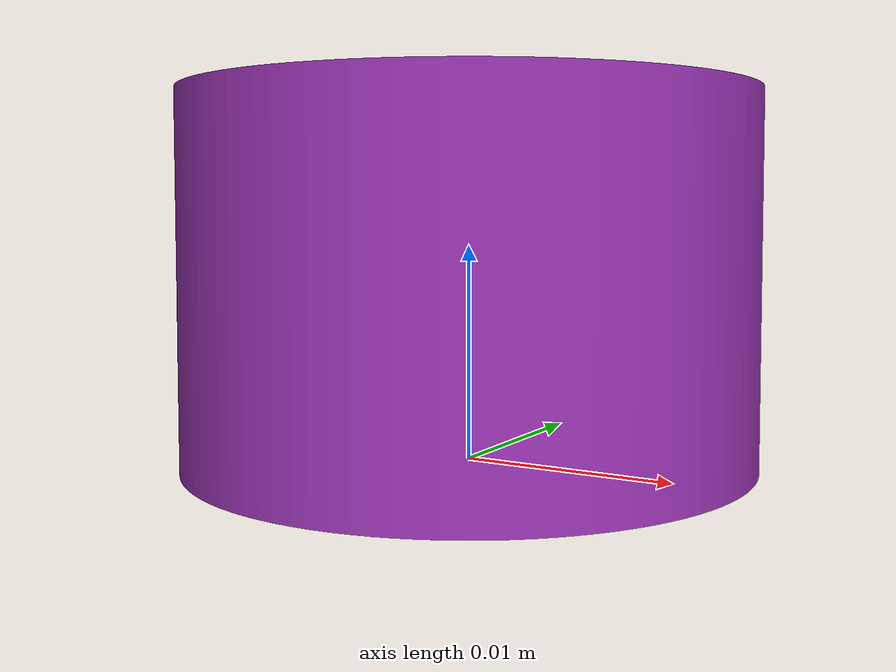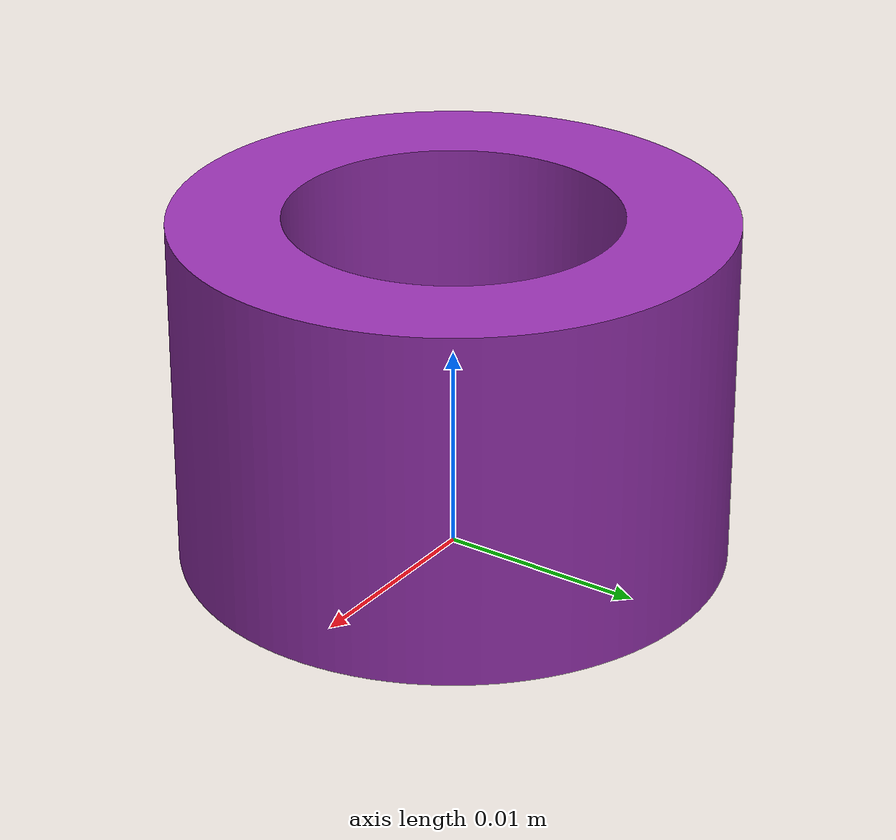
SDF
<sdf version='1.6'>
  <model name='hanoi_tower_d200'>
    <link name='token_d200_link'>
      <pose frame=''>0 0 0 0 -0 0</pose>
      <inertial>
        <pose frame=''>0 0 0.0085 0 -0 0</pose>
        <mass>0.45</mass>
        <inertia>
          <ixx>2.61375e-05</ixx>
          <ixy>0</ixy>
          <ixz>0</ixz>
          <iyy>2.61375e-05</iyy>
          <iyz>0</iyz>
          <izz>3.06e-05</izz>
        </inertia>
      </inertial>
      <collision name='token_d200_link_fixed_joint_lump__collision_d200_b1_collision'>
        <pose frame=''>0 0 0.0085 0 -0 0</pose>
        <geometry>
            <mesh>
            <scale>1.2 1.2 1</scale>
            <uri>model://hanoi_tower_d200/meshes/token-200.stl</uri>
          </mesh>
        </geometry>
        <surface>
          <friction>
            <ode>
              <mu>10</mu>
              <mu2>10</mu2>
              <fdir1>1 1 1</fdir1>
            </ode>
          </friction>
          </surface>
      </collision>
      <visual name='token_d200_link_visual'>
        <pose frame=''>0 0 0.0085 0 -0 0</pose>
        <geometry>
          <mesh>
            <scale>1.2 1.2 1</scale>
            <uri>model://hanoi_tower_d200/meshes/token-200.dae</uri>
          </mesh>
        </geometry>
        <material>
          <script>
            <name>Gazebo/Purple</name>
            <uri>file://media/materials/scripts/gazebo.material</uri>
          </script>
        </material>
      </visual>
      <gravity>1</gravity>
      <velocity_decay>
        <linear>0.8</linear>
        <angular>0.8</angular>
      </velocity_decay>
    </link>
  </model>
</sdf>
